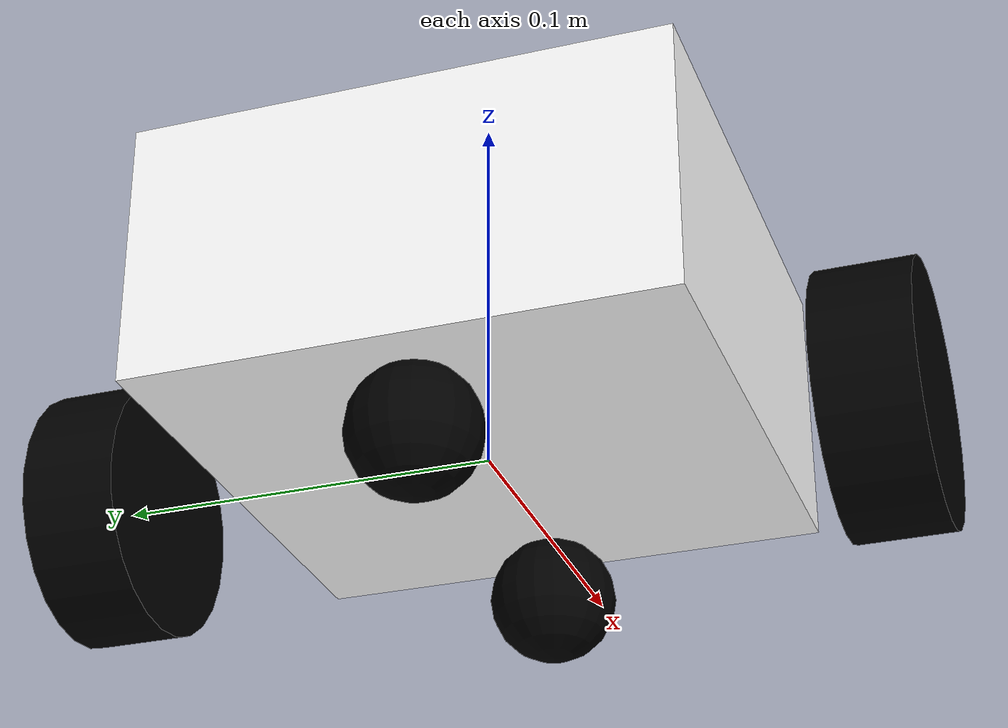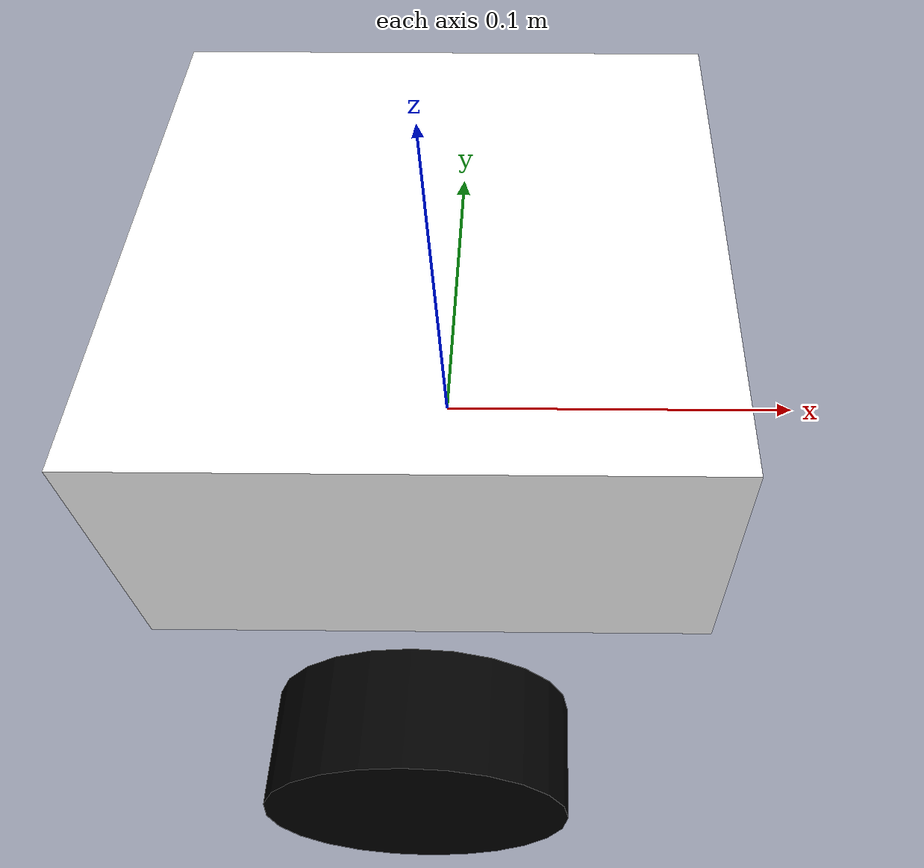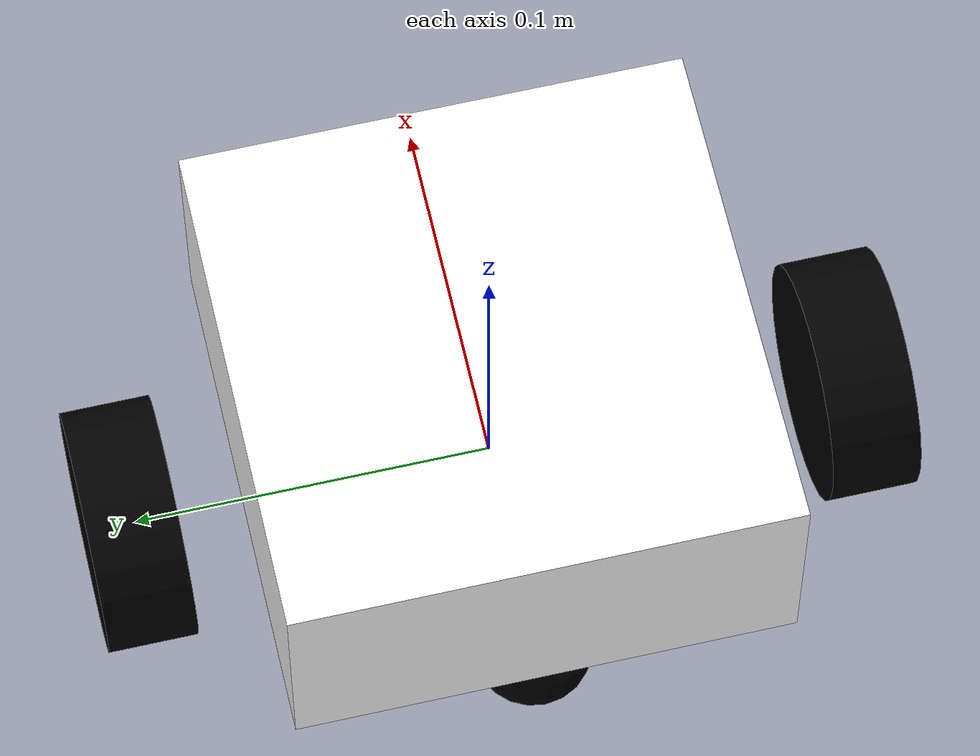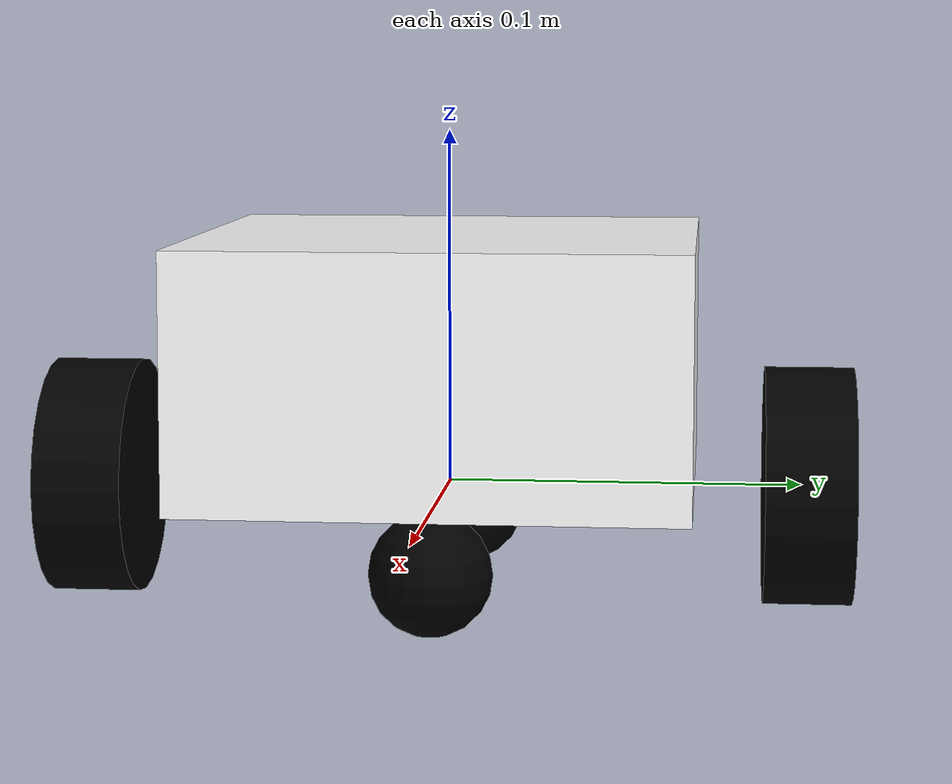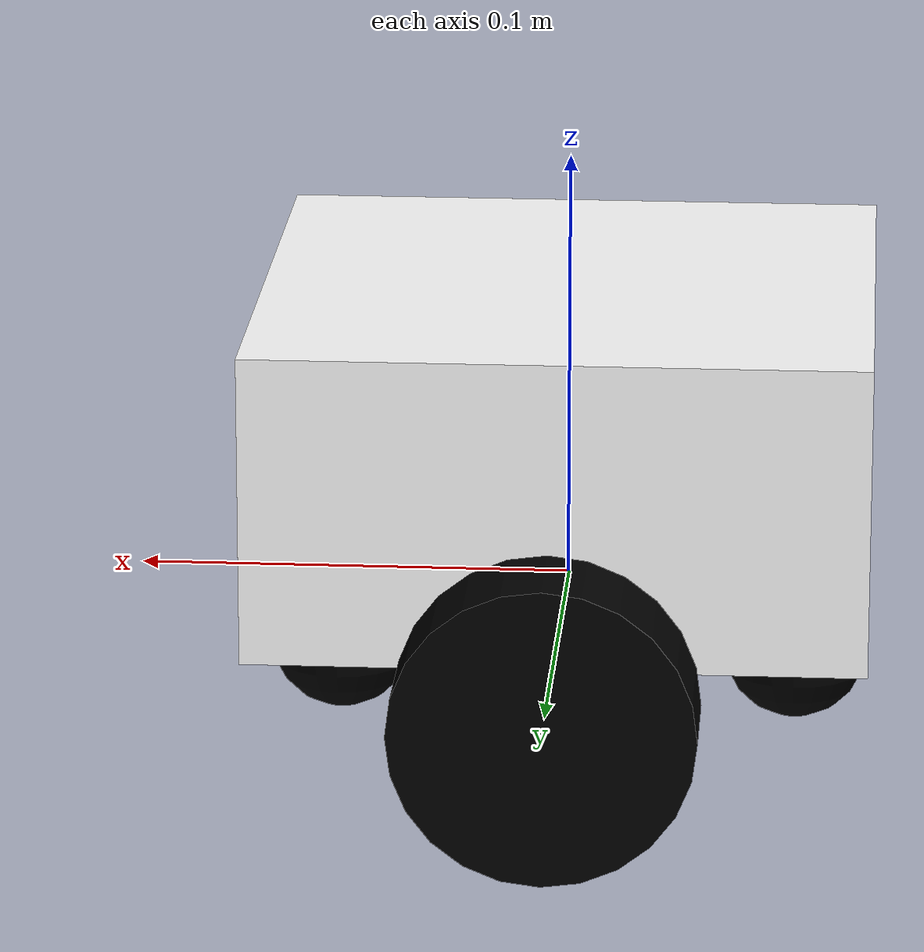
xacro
<?xml version="1.0"?>
<robot xmlns:xacro="http://www.ros.org/wiki/xacro" name="nanobot">

  <xacro:arg name="sim_mode" default="false" />

  <xacro:include filename="robot_core.xacro" />

  <xacro:if value="$(arg sim_mode)">
    <xacro:include filename="$(find nanobot_diffdrive)/description/gazebo_ros2_control.xacro" />
  </xacro:if>
  <xacro:unless value="$(arg sim_mode)">
    <xacro:include filename="$(find nanobot_diffdrive)/description/ros2_control.xacro" />
  </xacro:unless>

</robot>

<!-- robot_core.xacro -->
<robot xmlns:xacro="http://www.ros.org/wiki/xacro" name="opibot">

  <xacro:include filename="inertial_macros.xacro" />

  <!-- Body dimensions -->
  <xacro:property name="body_x_dim" value="0.14" />
  <xacro:property name="body_y_dim" value="0.14" />
  <xacro:property name="body_z_dim" value="0.071" />

  <!-- Wheel dimensions -->
  <xacro:property name="wheel_radius" value="0.03375" /> <!-- 67.5mm diameter -->
  <xacro:property name="wheel_length" value="0.025" />
  <xacro:property name="wheel_separation_from_body" value="0.0195" />
  <xacro:property name="caster_wheel_radius" value="${wheel_radius/2}" />

  <!-- Robot body and wheel mass -->
  <xacro:property name="body_mass" value="0.906" />
  <xacro:property name="wheel_mass" value="0.028" />
  <xacro:property name="caster_wheel_mass" value="0.008" />

  <!-- Moments of intertia of the wheel -->
  <xacro:macro name="inertia_wheel">
    <xacro:inertial_cylinder mass="${wheel_mass}" length="${wheel_length}"
      radius="${wheel_radius}">
      <origin xyz="0 0 0" rpy="0 0 0" />
    </xacro:inertial_cylinder>
  </xacro:macro>

  <!-- Moments of intertia of the caster wheel -->
  <xacro:macro name="inertia_caster_wheel">
    <xacro:inertial_sphere mass="${caster_wheel_mass}" radius="${caster_wheel_radius}">
      <origin xyz="0 0 0" rpy="0 0 0" />
    </xacro:inertial_sphere>
  </xacro:macro>

  <!-- Materials -->

  <material name="white">
    <color rgba="1 1 1 1" />
  </material>

  <material name="black">
    <color rgba="0 0 0 1" />
  </material>

  <!-- Links and joints definition -->

  <!-- Base link -->

  <link name="base_link"></link>

  <!-- Body -->

  <joint name="body_joint" type="fixed">
    <parent link="base_link" />
    <child link="body_link" />
    <origin xyz="-${body_x_dim/2} 0 0"/>
  </joint>

  <link name="body_link">
    <visual>
      <origin xyz="${body_x_dim/2} 0 ${body_z_dim/2}" rpy="0 0 0" />
      <geometry>
        <box size="${body_x_dim} ${body_y_dim} ${body_z_dim}" />
      </geometry>
      <material name="white" />
    </visual>
    <collision>
      <origin xyz="${body_x_dim/2} 0 ${body_z_dim/2}" rpy="0 0 0" />
      <geometry>
        <box size="${body_x_dim} ${body_y_dim} ${body_z_dim}" />
      </geometry>
    </collision>
    <xacro:inertial_box mass="${body_mass}" x="${body_x_dim}" y="${body_y_dim}"
      z="${body_z_dim}">
      <origin xyz="${body_x_dim/2} 0 ${body_z_dim/2}" rpy="0 0 0" />
    </xacro:inertial_box>
  </link>

  <gazebo reference="body_link">
    <material>Gazebo/White</material>
  </gazebo>

  <!-- Left wheel -->

  <joint name="left_wheel_joint" type="continuous">
    <parent link="base_link" />
    <child link="left_wheel_link" />
    <origin
      xyz="0 ${body_y_dim/2 + wheel_length/2 + wheel_separation_from_body} 0"
      rpy="-${pi/2} 0 0" />
    <axis xyz="0 0 1" />
    <limit effort="100" velocity="100" />
  </joint>

  <link name="left_wheel_link">
    <visual>
      <geometry>
        <cylinder length="${wheel_length}" radius="${wheel_radius}" />
      </geometry>
      <material name="black" />
    </visual>
    <collision>
      <geometry>
        <sphere radius="${wheel_radius}" />
      </geometry>
    </collision>
    <xacro:inertia_wheel />
  </link>

  <gazebo reference="left_wheel_link">
    <material>Gazebo/Black</material>
  </gazebo>

  <!-- Right wheel -->

  <joint name="right_wheel_joint" type="continuous">
    <parent link="base_link" />
    <child link="right_wheel_link" />
    <origin
      xyz="0 -${body_y_dim/2 + wheel_length/2 + wheel_separation_from_body} 0"
      rpy="${pi/2} 0 0" />
    <axis xyz="0 0 -1" />
    <limit effort="100" velocity="100" />
  </joint>

  <link name="right_wheel_link">
    <visual>
      <geometry>
        <cylinder length="${wheel_length}" radius="${wheel_radius}" />
      </geometry>
      <material name="black" />
    </visual>
    <collision>
      <geometry>
        <sphere radius="${wheel_radius}" />
      </geometry>
    </collision>
    <xacro:inertia_wheel />
  </link>

  <gazebo reference="right_wheel_link">
    <material>Gazebo/Black</material>
  </gazebo>

  <!-- Back caster wheel -->

  <joint name="back_caster_wheel_joint" type="fixed">
      <parent link="body_link"/>
      <child link="back_caster_wheel_link"/>
      <origin
        xyz="${caster_wheel_radius} 0 -${caster_wheel_radius}"
        rpy="0 0 0"/>
  </joint>

  <link name="back_caster_wheel_link">
    <visual>
      <geometry>
        <sphere radius="${caster_wheel_radius}" />
      </geometry>
      <material name="black"/>
    </visual>
    <collision>
      <geometry>
        <sphere radius="${caster_wheel_radius}" />
      </geometry>
    </collision>
    <xacro:inertia_caster_wheel />
  </link>

  <gazebo reference="back_caster_wheel_link">
    <material>Gazebo/Black</material>
    <mu1 value="0.001"/>
    <mu2 value="0.001"/>
  </gazebo>

  <!-- Front caster wheel -->

  <joint name="front_caster_wheel_joint" type="fixed">
      <parent link="body_link"/>
      <child link="front_caster_wheel_link"/>
      <origin
        xyz="${body_x_dim - caster_wheel_radius} 0 -${caster_wheel_radius}"
        rpy="0 0 0"/>
  </joint>

  <link name="front_caster_wheel_link">
    <visual>
      <geometry>
        <sphere radius="${caster_wheel_radius}" />
      </geometry>
      <material name="black"/>
    </visual>
    <collision>
      <geometry>
        <sphere radius="${caster_wheel_radius}" />
      </geometry>
    </collision>
    <xacro:inertia_caster_wheel />
  </link>

  <gazebo reference="front_caster_wheel_link">
    <material>Gazebo/Black</material>
    <mu1 value="0.001"/>
    <mu2 value="0.001"/>
  </gazebo>

</robot>

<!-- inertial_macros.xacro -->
<robot xmlns:xacro="http://www.ros.org/wiki/xacro">

  <!-- Specify some standard inertial calculations
  https://en.wikipedia.org/wiki/List_of_moments_of_inertia -->
  <!-- These make use of xacro's mathematical functionality -->

  <xacro:macro name="inertial_sphere" params="mass radius *origin">
    <inertial>
      <xacro:insert_block name="origin" />
      <mass value="${mass}" />
      <inertia ixx="${(2/5) * mass * (radius*radius)}" ixy="0.0" ixz="0.0"
        iyy="${(2/5) * mass * (radius*radius)}" iyz="0.0"
        izz="${(2/5) * mass * (radius*radius)}" />
    </inertial>
  </xacro:macro>

  <xacro:macro name="inertial_box" params="mass x y z *origin">
    <inertial>
      <xacro:insert_block name="origin" />
      <mass value="${mass}" />
      <inertia ixx="${(1/12) * mass * (y*y+z*z)}" ixy="0.0" ixz="0.0"
        iyy="${(1/12) * mass * (x*x+z*z)}" iyz="0.0"
        izz="${(1/12) * mass * (x*x+y*y)}" />
    </inertial>
  </xacro:macro>

  <xacro:macro name="inertial_cylinder" params="mass length radius *origin">
    <inertial>
      <xacro:insert_block name="origin" />
      <mass value="${mass}" />
      <inertia ixx="${(1/12) * mass * (3*radius*radius + length*length)}" ixy="0.0" ixz="0.0"
        iyy="${(1/12) * mass * (3*radius*radius + length*length)}" iyz="0.0"
        izz="${(1/2) * mass * (radius*radius)}" />
    </inertial>
  </xacro:macro>

</robot>
